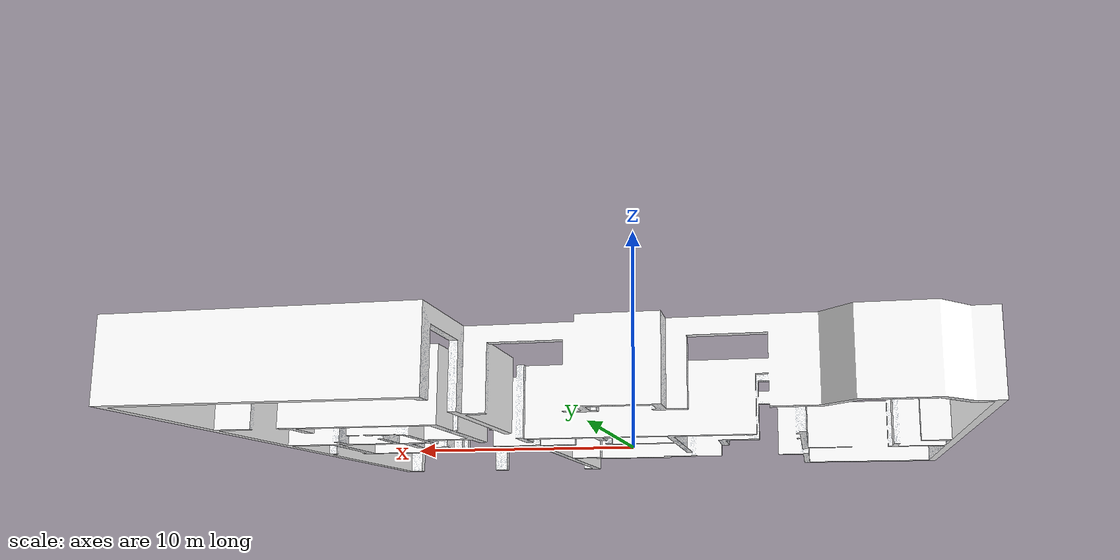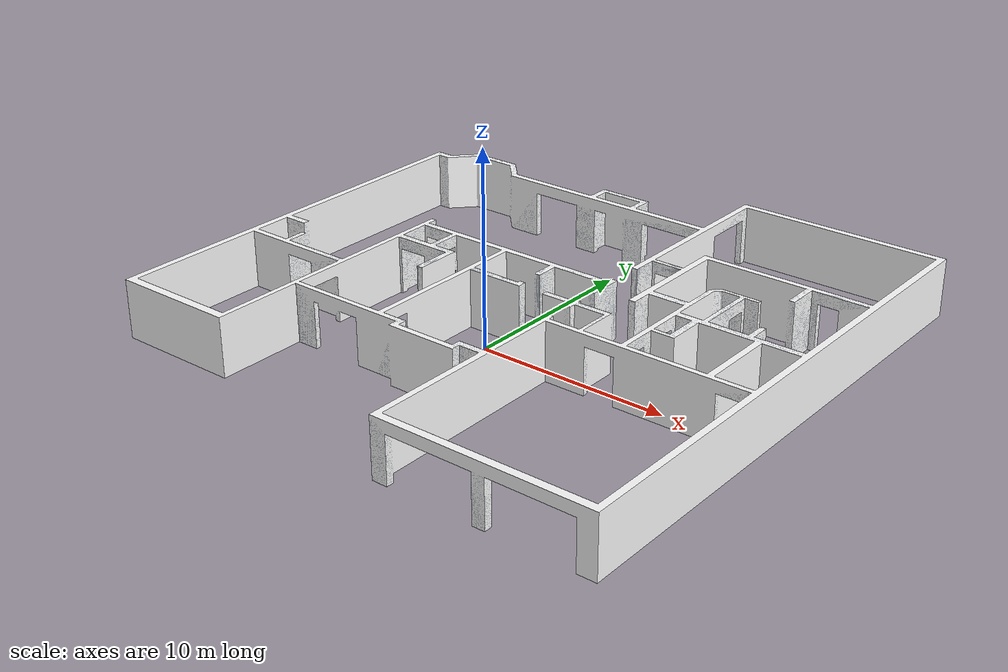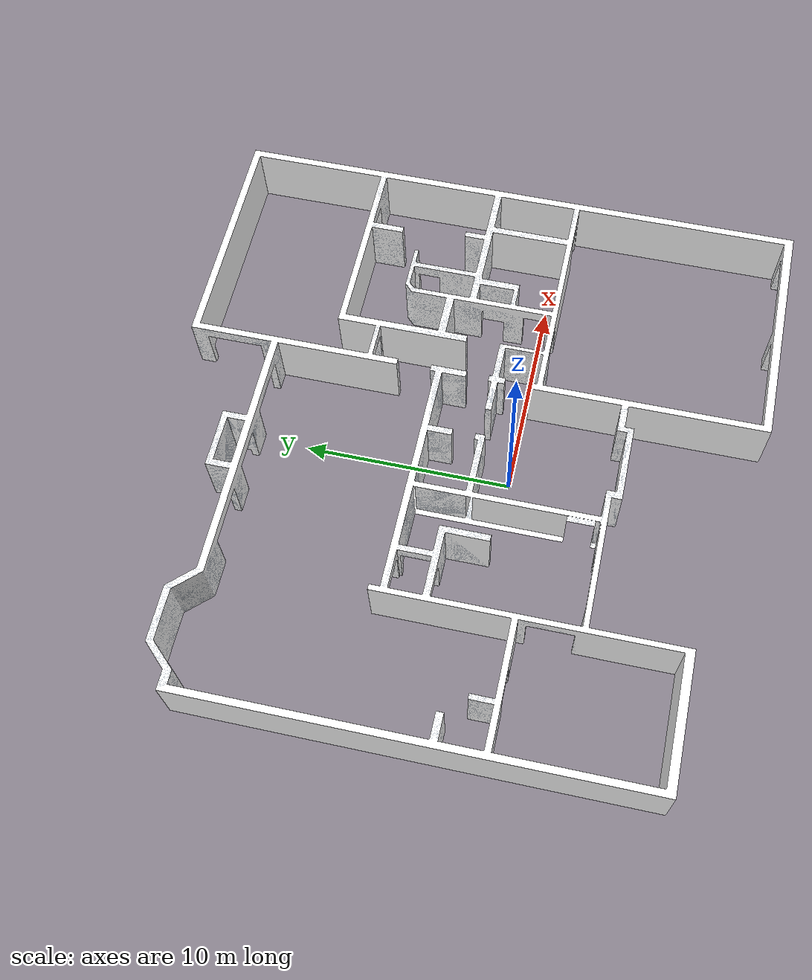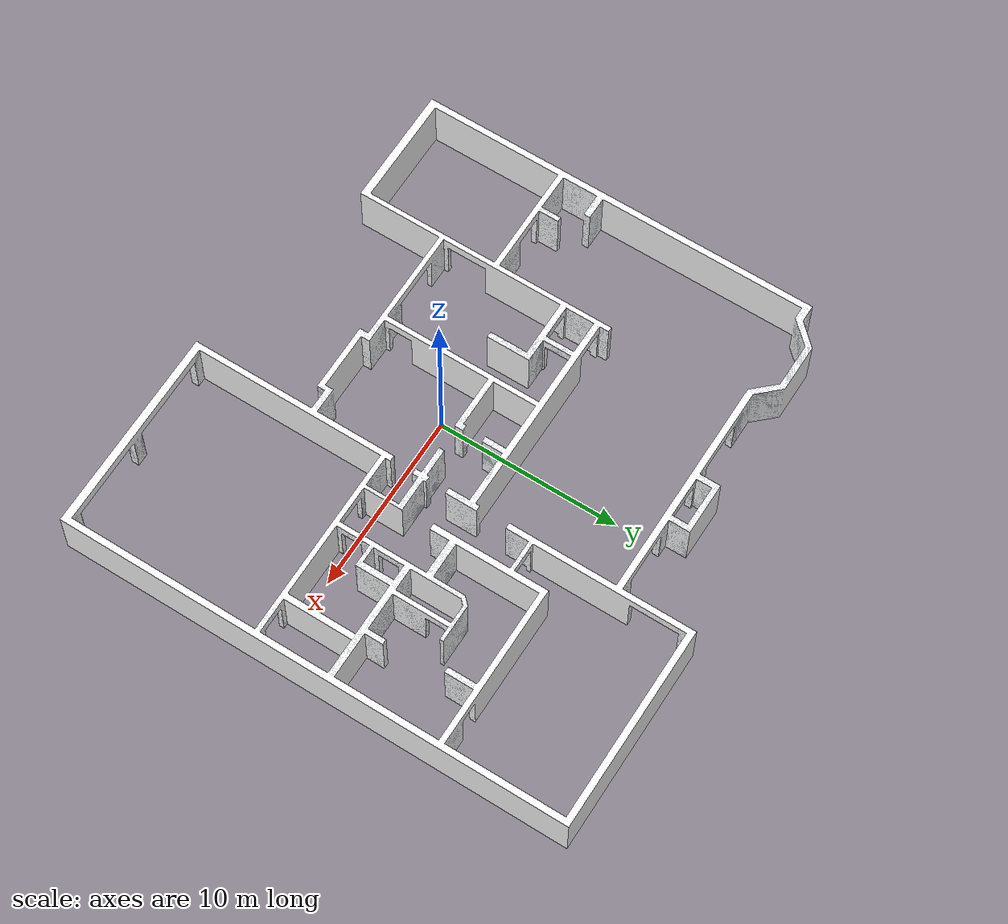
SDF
<?xml version="1.0" ?>
<sdf version="1.6">
  <model name="Apartment1">
    <static>true</static>
    <link name="link">
      <collision name="collision">
        <geometry>
          <mesh>
            <uri>model://apartment1/meshes/model.dae</uri>
            <scale>0 0 0</scale>
          </mesh>
        </geometry>
      </collision>
      <visual name="visual">
        <geometry>
          <mesh>
            <uri>model://apartment1/meshes/model.dae</uri>
            <scale>1.5 1.5 1</scale>
          </mesh>
        </geometry>
        <material>
        </material>
      </visual>
    </link>
  </model>
</sdf>
